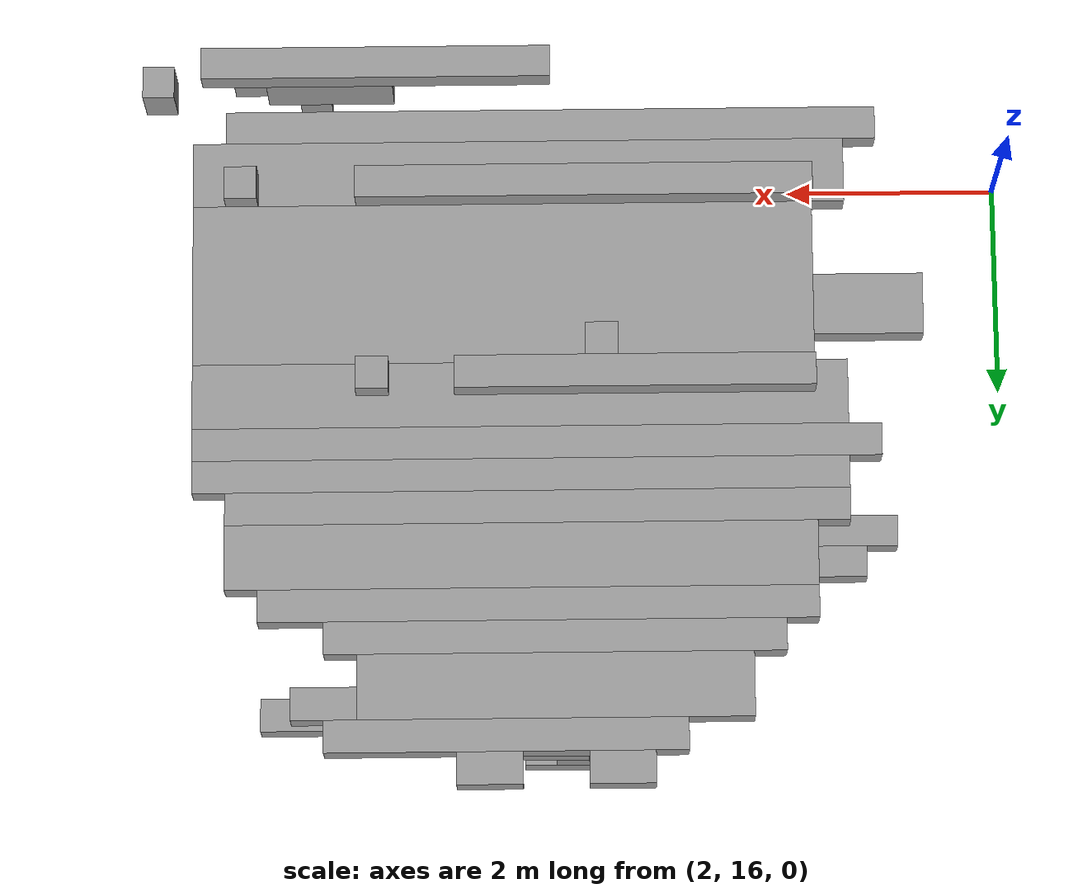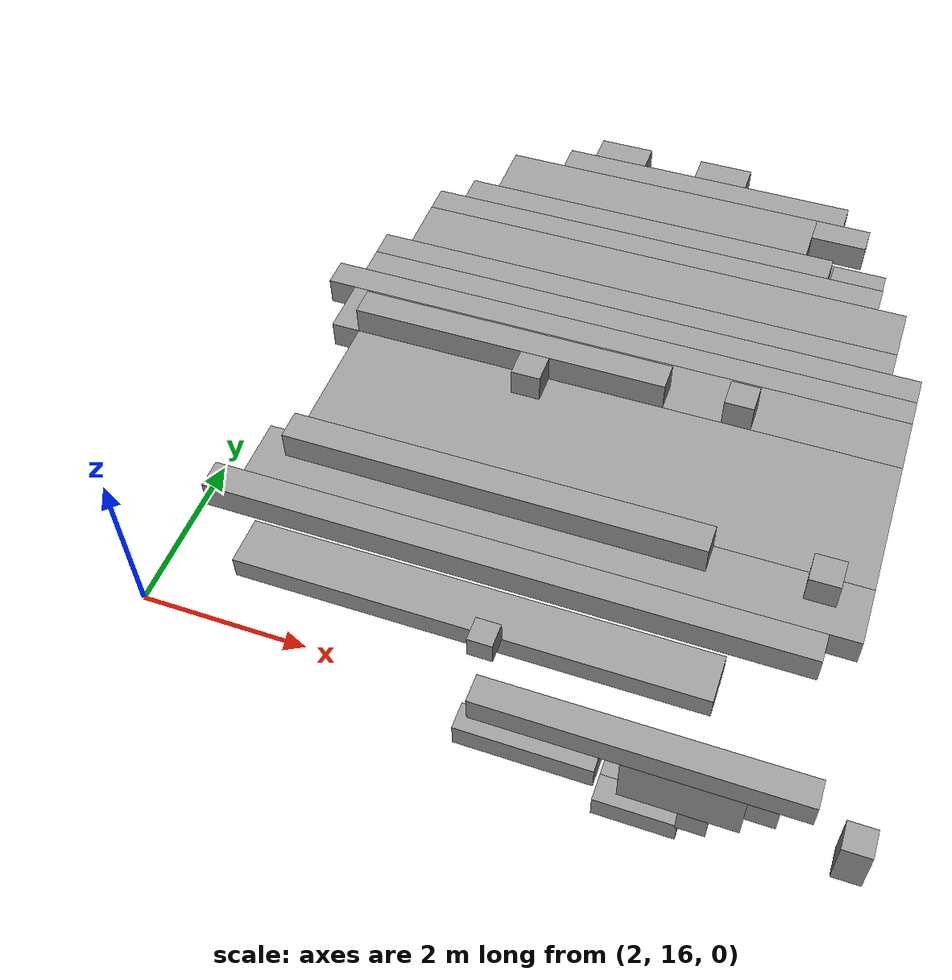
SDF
<sdf version="1.6">
 <world name="bt_world">
  <include><uri>model://sun</uri></include>
  <model name="obstacle_2317">
   <static>true</static>
   <pose>5.55 17.099999999999998 -0.15 0 0 0</pose>
   <link name="link">
    <collision name="collision"><geometry><box><size>5.7 0.6 0.3</size></box></geometry></collision>
    <visual name="visual">
     <geometry><box><size>5.7 0.6 0.3</size></box></geometry>
     <material><ambient>0.5 0.5 0.5 1</ambient><diffuse>0.6 0.6 0.6 1</diffuse></material>
    </visual>
   </link>
  </model>
  <model name="obstacle_2355">
   <static>true</static>
   <pose>5.3999999999999995 19.349999999999998 -0.15 0 0 0</pose>
   <link name="link">
    <collision name="collision"><geometry><box><size>4.8 0.3 0.3</size></box></geometry></collision>
    <visual name="visual">
     <geometry><box><size>4.8 0.3 0.3</size></box></geometry>
     <material><ambient>0.5 0.5 0.5 1</ambient><diffuse>0.6 0.6 0.6 1</diffuse></material>
    </visual>
   </link>
  </model>
  <model name="obstacle_2377">
   <static>true</static>
   <pose>6.3 16.05 2.55 0 0 0</pose>
   <link name="link">
    <collision name="collision"><geometry><box><size>6.0 0.3 0.3</size></box></geometry></collision>
    <visual name="visual">
     <geometry><box><size>6.0 0.3 0.3</size></box></geometry>
     <material><ambient>0.5 0.5 0.5 1</ambient><diffuse>0.6 0.6 0.6 1</diffuse></material>
    </visual>
   </link>
  </model>
  <model name="obstacle_2378">
   <static>true</static>
   <pose>6.45 19.05 2.55 0 0 0</pose>
   <link name="link">
    <collision name="collision"><geometry><box><size>6.3 0.3 0.3</size></box></geometry></collision>
    <visual name="visual">
     <geometry><box><size>6.3 0.3 0.3</size></box></geometry>
     <material><ambient>0.5 0.5 0.5 1</ambient><diffuse>0.6 0.6 0.6 1</diffuse></material>
    </visual>
   </link>
  </model>
  <model name="obstacle_2379">
   <static>true</static>
   <pose>5.3999999999999995 19.65 -0.15 0 0 0</pose>
   <link name="link">
    <collision name="collision"><geometry><box><size>4.2 0.3 0.3</size></box></geometry></collision>
    <visual name="visual">
     <geometry><box><size>4.2 0.3 0.3</size></box></geometry>
     <material><ambient>0.5 0.5 0.5 1</ambient><diffuse>0.6 0.6 0.6 1</diffuse></material>
    </visual>
   </link>
  </model>
  <model name="obstacle_2387">
   <static>true</static>
   <pose>6.6 16.5 2.55 0 0 0</pose>
   <link name="link">
    <collision name="collision"><geometry><box><size>6.0 0.6 0.3</size></box></geometry></collision>
    <visual name="visual">
     <geometry><box><size>6.0 0.6 0.3</size></box></geometry>
     <material><ambient>0.5 0.5 0.5 1</ambient><diffuse>0.6 0.6 0.6 1</diffuse></material>
    </visual>
   </link>
  </model>
  <model name="obstacle_2388">
   <static>true</static>
   <pose>6.6 18.599999999999998 2.55 0 0 0</pose>
   <link name="link">
    <collision name="collision"><geometry><box><size>6.0 0.6 0.3</size></box></geometry></collision>
    <visual name="visual">
     <geometry><box><size>6.0 0.6 0.3</size></box></geometry>
     <material><ambient>0.5 0.5 0.5 1</ambient><diffuse>0.6 0.6 0.6 1</diffuse></material>
    </visual>
   </link>
  </model>
  <model name="obstacle_2389">
   <static>true</static>
   <pose>6.6 19.349999999999998 2.55 0 0 0</pose>
   <link name="link">
    <collision name="collision"><geometry><box><size>6.0 0.3 0.3</size></box></geometry></collision>
    <visual name="visual">
     <geometry><box><size>6.0 0.3 0.3</size></box></geometry>
     <material><ambient>0.5 0.5 0.5 1</ambient><diffuse>0.6 0.6 0.6 1</diffuse></material>
    </visual>
   </link>
  </model>
  <model name="obstacle_2390">
   <static>true</static>
   <pose>6.45 19.65 2.55 0 0 0</pose>
   <link name="link">
    <collision name="collision"><geometry><box><size>5.7 0.3 0.3</size></box></geometry></collision>
    <visual name="visual">
     <geometry><box><size>5.7 0.3 0.3</size></box></geometry>
     <material><ambient>0.5 0.5 0.5 1</ambient><diffuse>0.6 0.6 0.6 1</diffuse></material>
    </visual>
   </link>
  </model>
  <model name="obstacle_2451">
   <static>true</static>
   <pose>6.0 16.65 2.85 0 0 0</pose>
   <link name="link">
    <collision name="collision"><geometry><box><size>4.2 0.3 0.3</size></box></geometry></collision>
    <visual name="visual">
     <geometry><box><size>4.2 0.3 0.3</size></box></geometry>
     <material><ambient>0.5 0.5 0.5 1</ambient><diffuse>0.6 0.6 0.6 1</diffuse></material>
    </visual>
   </link>
  </model>
  <model name="obstacle_2452">
   <static>true</static>
   <pose>6.75 17.55 2.55 0 0 0</pose>
   <link name="link">
    <collision name="collision"><geometry><box><size>5.7 1.5 0.3</size></box></geometry></collision>
    <visual name="visual">
     <geometry><box><size>5.7 1.5 0.3</size></box></geometry>
     <material><ambient>0.5 0.5 0.5 1</ambient><diffuse>0.6 0.6 0.6 1</diffuse></material>
    </visual>
   </link>
  </model>
  <model name="obstacle_2453">
   <static>true</static>
   <pose>5.55 18.45 2.85 0 0 0</pose>
   <link name="link">
    <collision name="collision"><geometry><box><size>3.3 0.3 0.3</size></box></geometry></collision>
    <visual name="visual">
     <geometry><box><size>3.3 0.3 0.3</size></box></geometry>
     <material><ambient>0.5 0.5 0.5 1</ambient><diffuse>0.6 0.6 0.6 1</diffuse></material>
    </visual>
   </link>
  </model>
  <model name="obstacle_2454">
   <static>true</static>
   <pose>6.6 20.099999999999998 2.55 0 0 0</pose>
   <link name="link">
    <collision name="collision">
     <geometry><box><size>5.3999999999999995 0.6 0.3</size></box></geometry>
    </collision>
    <visual name="visual">
     <geometry><box><size>5.3999999999999995 0.6 0.3</size></box></geometry>
     <material><ambient>0.5 0.5 0.5 1</ambient><diffuse>0.6 0.6 0.6 1</diffuse></material>
    </visual>
   </link>
  </model>
  <model name="obstacle_2456">
   <static>true</static>
   <pose>6.45 20.55 2.55 0 0 0</pose>
   <link name="link">
    <collision name="collision"><geometry><box><size>5.1 0.3 0.3</size></box></geometry></collision>
    <visual name="visual">
     <geometry><box><size>5.1 0.3 0.3</size></box></geometry>
     <material><ambient>0.5 0.5 0.5 1</ambient><diffuse>0.6 0.6 0.6 1</diffuse></material>
    </visual>
   </link>
  </model>
  <model name="obstacle_2551">
   <static>true</static>
   <pose>6.3 20.849999999999998 2.55 0 0 0</pose>
   <link name="link">
    <collision name="collision"><geometry><box><size>4.2 0.3 0.3</size></box></geometry></collision>
    <visual name="visual">
     <geometry><box><size>4.2 0.3 0.3</size></box></geometry>
     <material><ambient>0.5 0.5 0.5 1</ambient><diffuse>0.6 0.6 0.6 1</diffuse></material>
    </visual>
   </link>
  </model>
  <model name="obstacle_2600">
   <static>true</static>
   <pose>6.3 21.3 2.55 0 0 0</pose>
   <link name="link">
    <collision name="collision">
     <geometry><box><size>3.5999999999999996 0.6 0.3</size></box></geometry>
    </collision>
    <visual name="visual">
     <geometry><box><size>3.5999999999999996 0.6 0.3</size></box></geometry>
     <material><ambient>0.5 0.5 0.5 1</ambient><diffuse>0.6 0.6 0.6 1</diffuse></material>
    </visual>
   </link>
  </model>
  <model name="obstacle_2622">
   <static>true</static>
   <pose>6.45 21.15 0.44999999999999996 0 0 0</pose>
   <link name="link">
    <collision name="collision">
     <geometry><box><size>2.6999999999999997 0.3 0.3</size></box></geometry>
    </collision>
    <visual name="visual">
     <geometry><box><size>2.6999999999999997 0.3 0.3</size></box></geometry>
     <material><ambient>0.5 0.5 0.5 1</ambient><diffuse>0.6 0.6 0.6 1</diffuse></material>
    </visual>
   </link>
  </model>
  <model name="obstacle_2623">
   <static>true</static>
   <pose>6.75 21.75 2.55 0 0 0</pose>
   <link name="link">
    <collision name="collision"><geometry><box><size>3.3 0.3 0.3</size></box></geometry></collision>
    <visual name="visual">
     <geometry><box><size>3.3 0.3 0.3</size></box></geometry>
     <material><ambient>0.5 0.5 0.5 1</ambient><diffuse>0.6 0.6 0.6 1</diffuse></material>
    </visual>
   </link>
  </model>
  <model name="obstacle_2630">
   <static>true</static>
   <pose>5.7 21.3 0.75 0 0 0</pose>
   <link name="link">
    <collision name="collision"><geometry><box><size>0.6 0.6 0.3</size></box></geometry></collision>
    <visual name="visual">
     <geometry><box><size>0.6 0.6 0.3</size></box></geometry>
     <material><ambient>0.5 0.5 0.5 1</ambient><diffuse>0.6 0.6 0.6 1</diffuse></material>
    </visual>
   </link>
  </model>
  <model name="obstacle_2631">
   <static>true</static>
   <pose>6.0 21.45 -0.15 0 0 0</pose>
   <link name="link">
    <collision name="collision"><geometry><box><size>1.2 0.3 0.3</size></box></geometry></collision>
    <visual name="visual">
     <geometry><box><size>1.2 0.3 0.3</size></box></geometry>
     <material><ambient>0.5 0.5 0.5 1</ambient><diffuse>0.6 0.6 0.6 1</diffuse></material>
    </visual>
   </link>
  </model>
  <model name="obstacle_2632">
   <static>true</static>
   <pose>5.85 21.45 0.15 0 0 0</pose>
   <link name="link">
    <collision name="collision">
     <geometry><box><size>0.8999999999999999 0.3 0.3</size></box></geometry>
    </collision>
    <visual name="visual">
     <geometry><box><size>0.8999999999999999 0.3 0.3</size></box></geometry>
     <material><ambient>0.5 0.5 0.5 1</ambient><diffuse>0.6 0.6 0.6 1</diffuse></material>
    </visual>
   </link>
  </model>
  <model name="obstacle_2633">
   <static>true</static>
   <pose>6.6 21.45 1.5 0 0 0</pose>
   <link name="link">
    <collision name="collision"><geometry><box><size>2.4 0.3 1.2</size></box></geometry></collision>
    <visual name="visual">
     <geometry><box><size>2.4 0.3 1.2</size></box></geometry>
     <material><ambient>0.5 0.5 0.5 1</ambient><diffuse>0.6 0.6 0.6 1</diffuse></material>
    </visual>
   </link>
  </model>
  <model name="obstacle_2634">
   <static>true</static>
   <pose>5.7 22.05 2.55 0 0 0</pose>
   <link name="link">
    <collision name="collision"><geometry><box><size>0.6 0.3 0.3</size></box></geometry></collision>
    <visual name="visual">
     <geometry><box><size>0.6 0.3 0.3</size></box></geometry>
     <material><ambient>0.5 0.5 0.5 1</ambient><diffuse>0.6 0.6 0.6 1</diffuse></material>
    </visual>
   </link>
  </model>
  <model name="obstacle_2636">
   <static>true</static>
   <pose>5.85 16.65 0.15 0 0 0</pose>
   <link name="link">
    <collision name="collision"><geometry><box><size>0.3 0.3 0.3</size></box></geometry></collision>
    <visual name="visual">
     <geometry><box><size>0.3 0.3 0.3</size></box></geometry>
     <material><ambient>0.5 0.5 0.5 1</ambient><diffuse>0.6 0.6 0.6 1</diffuse></material>
    </visual>
   </link>
  </model>
  <model name="obstacle_2637">
   <static>true</static>
   <pose>5.85 18.15 2.85 0 0 0</pose>
   <link name="link">
    <collision name="collision"><geometry><box><size>0.3 0.3 0.3</size></box></geometry></collision>
    <visual name="visual">
     <geometry><box><size>0.3 0.3 0.3</size></box></geometry>
     <material><ambient>0.5 0.5 0.5 1</ambient><diffuse>0.6 0.6 0.6 1</diffuse></material>
    </visual>
   </link>
  </model>
  <model name="obstacle_2638">
   <static>true</static>
   <pose>6.75 21.15 -0.15 0 0 0</pose>
   <link name="link">
    <collision name="collision"><geometry><box><size>2.1 0.3 0.3</size></box></geometry></collision>
    <visual name="visual">
     <geometry><box><size>2.1 0.3 0.3</size></box></geometry>
     <material><ambient>0.5 0.5 0.5 1</ambient><diffuse>0.6 0.6 0.6 1</diffuse></material>
    </visual>
   </link>
  </model>
  <model name="obstacle_2639">
   <static>true</static>
   <pose>6.6 21.15 0.15 0 0 0</pose>
   <link name="link">
    <collision name="collision">
     <geometry><box><size>1.7999999999999998 0.3 0.3</size></box></geometry>
    </collision>
    <visual name="visual">
     <geometry><box><size>1.7999999999999998 0.3 0.3</size></box></geometry>
     <material><ambient>0.5 0.5 0.5 1</ambient><diffuse>0.6 0.6 0.6 1</diffuse></material>
    </visual>
   </link>
  </model>
  <model name="obstacle_2640">
   <static>true</static>
   <pose>6.45 21.45 0.44999999999999996 0 0 0</pose>
   <link name="link">
    <collision name="collision"><geometry><box><size>1.5 0.3 0.3</size></box></geometry></collision>
    <visual name="visual">
     <geometry><box><size>1.5 0.3 0.3</size></box></geometry>
     <material><ambient>0.5 0.5 0.5 1</ambient><diffuse>0.6 0.6 0.6 1</diffuse></material>
    </visual>
   </link>
  </model>
  <model name="obstacle_2641">
   <static>true</static>
   <pose>5.85 21.75 2.25 0 0 0</pose>
   <link name="link">
    <collision name="collision"><geometry><box><size>0.3 0.3 0.3</size></box></geometry></collision>
    <visual name="visual">
     <geometry><box><size>0.3 0.3 0.3</size></box></geometry>
     <material><ambient>0.5 0.5 0.5 1</ambient><diffuse>0.6 0.6 0.6 1</diffuse></material>
    </visual>
   </link>
  </model>
  <model name="obstacle_2645">
   <static>true</static>
   <pose>6.75 15.45 0.44999999999999996 0 0 0</pose>
   <link name="link">
    <collision name="collision"><geometry><box><size>1.5 0.3 0.3</size></box></geometry></collision>
    <visual name="visual">
     <geometry><box><size>1.5 0.3 0.3</size></box></geometry>
     <material><ambient>0.5 0.5 0.5 1</ambient><diffuse>0.6 0.6 0.6 1</diffuse></material>
    </visual>
   </link>
  </model>
  <model name="obstacle_2646">
   <static>true</static>
   <pose>6.8999999999999995 20.849999999999998 0.15 0 0 0</pose>
   <link name="link">
    <collision name="collision">
     <geometry><box><size>1.7999999999999998 0.3 0.3</size></box></geometry>
    </collision>
    <visual name="visual">
     <geometry><box><size>1.7999999999999998 0.3 0.3</size></box></geometry>
     <material><ambient>0.5 0.5 0.5 1</ambient><diffuse>0.6 0.6 0.6 1</diffuse></material>
    </visual>
   </link>
  </model>
  <model name="obstacle_2647">
   <static>true</static>
   <pose>6.3 21.15 1.2 0 0 0</pose>
   <link name="link">
    <collision name="collision"><geometry><box><size>0.6 0.3 0.6</size></box></geometry></collision>
    <visual name="visual">
     <geometry><box><size>0.6 0.3 0.6</size></box></geometry>
     <material><ambient>0.5 0.5 0.5 1</ambient><diffuse>0.6 0.6 0.6 1</diffuse></material>
    </visual>
   </link>
  </model>
  <model name="obstacle_2648">
   <static>true</static>
   <pose>6.3 21.15 1.95 0 0 0</pose>
   <link name="link">
    <collision name="collision"><geometry><box><size>0.6 0.3 0.3</size></box></geometry></collision>
    <visual name="visual">
     <geometry><box><size>0.6 0.3 0.3</size></box></geometry>
     <material><ambient>0.5 0.5 0.5 1</ambient><diffuse>0.6 0.6 0.6 1</diffuse></material>
    </visual>
   </link>
  </model>
  <model name="obstacle_2649">
   <static>true</static>
   <pose>6.8999999999999995 21.45 0.75 0 0 0</pose>
   <link name="link">
    <collision name="collision">
     <geometry><box><size>1.7999999999999998 0.3 0.3</size></box></geometry>
    </collision>
    <visual name="visual">
     <geometry><box><size>1.7999999999999998 0.3 0.3</size></box></geometry>
     <material><ambient>0.5 0.5 0.5 1</ambient><diffuse>0.6 0.6 0.6 1</diffuse></material>
    </visual>
   </link>
  </model>
  <model name="obstacle_2652">
   <static>true</static>
   <pose>7.949999999999999 15.149999999999999 1.65 0 0 0</pose>
   <link name="link">
    <collision name="collision"><geometry><box><size>3.3 0.3 0.3</size></box></geometry></collision>
    <visual name="visual">
     <geometry><box><size>3.3 0.3 0.3</size></box></geometry>
     <material><ambient>0.5 0.5 0.5 1</ambient><diffuse>0.6 0.6 0.6 1</diffuse></material>
    </visual>
   </link>
  </model>
  <model name="obstacle_2653">
   <static>true</static>
   <pose>7.05 20.849999999999998 -0.15 0 0 0</pose>
   <link name="link">
    <collision name="collision"><geometry><box><size>1.5 0.3 0.3</size></box></geometry></collision>
    <visual name="visual">
     <geometry><box><size>1.5 0.3 0.3</size></box></geometry>
     <material><ambient>0.5 0.5 0.5 1</ambient><diffuse>0.6 0.6 0.6 1</diffuse></material>
    </visual>
   </link>
  </model>
  <model name="obstacle_2654">
   <static>true</static>
   <pose>7.05 20.849999999999998 0.44999999999999996 0 0 0</pose>
   <link name="link">
    <collision name="collision"><geometry><box><size>1.5 0.3 0.3</size></box></geometry></collision>
    <visual name="visual">
     <geometry><box><size>1.5 0.3 0.3</size></box></geometry>
     <material><ambient>0.5 0.5 0.5 1</ambient><diffuse>0.6 0.6 0.6 1</diffuse></material>
    </visual>
   </link>
  </model>
  <model name="obstacle_2655">
   <static>true</static>
   <pose>6.75 21.15 0.75 0 0 0</pose>
   <link name="link">
    <collision name="collision">
     <geometry><box><size>0.8999999999999999 0.3 0.3</size></box></geometry>
    </collision>
    <visual name="visual">
     <geometry><box><size>0.8999999999999999 0.3 0.3</size></box></geometry>
     <material><ambient>0.5 0.5 0.5 1</ambient><diffuse>0.6 0.6 0.6 1</diffuse></material>
    </visual>
   </link>
  </model>
  <model name="obstacle_2658">
   <static>true</static>
   <pose>6.8999999999999995 22.05 2.55 0 0 0</pose>
   <link name="link">
    <collision name="collision"><geometry><box><size>0.6 0.3 0.3</size></box></geometry></collision>
    <visual name="visual">
     <geometry><box><size>0.6 0.3 0.3</size></box></geometry>
     <material><ambient>0.5 0.5 0.5 1</ambient><diffuse>0.6 0.6 0.6 1</diffuse></material>
    </visual>
   </link>
  </model>
  <model name="obstacle_2659">
   <static>true</static>
   <pose>7.05 15.75 -0.15 0 0 0</pose>
   <link name="link">
    <collision name="collision"><geometry><box><size>0.3 0.3 0.3</size></box></geometry></collision>
    <visual name="visual">
     <geometry><box><size>0.3 0.3 0.3</size></box></geometry>
     <material><ambient>0.5 0.5 0.5 1</ambient><diffuse>0.6 0.6 0.6 1</diffuse></material>
    </visual>
   </link>
  </model>
  <model name="obstacle_2663">
   <static>true</static>
   <pose>7.949999999999999 15.45 -0.15 0 0 0</pose>
   <link name="link">
    <collision name="collision">
     <geometry><box><size>0.8999999999999999 0.3 0.3</size></box></geometry>
    </collision>
    <visual name="visual">
     <geometry><box><size>0.8999999999999999 0.3 0.3</size></box></geometry>
     <material><ambient>0.5 0.5 0.5 1</ambient><diffuse>0.6 0.6 0.6 1</diffuse></material>
    </visual>
   </link>
  </model>
  <model name="obstacle_2664">
   <static>true</static>
   <pose>7.6499999999999995 15.75 -0.15 0 0 0</pose>
   <link name="link">
    <collision name="collision"><geometry><box><size>0.3 0.3 0.3</size></box></geometry></collision>
    <visual name="visual">
     <geometry><box><size>0.3 0.3 0.3</size></box></geometry>
     <material><ambient>0.5 0.5 0.5 1</ambient><diffuse>0.6 0.6 0.6 1</diffuse></material>
    </visual>
   </link>
  </model>
  <model name="obstacle_2666">
   <static>true</static>
   <pose>8.4 15.149999999999999 1.2 0 0 0</pose>
   <link name="link">
    <collision name="collision"><geometry><box><size>1.2 0.3 0.6</size></box></geometry></collision>
    <visual name="visual">
     <geometry><box><size>1.2 0.3 0.6</size></box></geometry>
     <material><ambient>0.5 0.5 0.5 1</ambient><diffuse>0.6 0.6 0.6 1</diffuse></material>
    </visual>
   </link>
  </model>
  <model name="obstacle_2667">
   <static>true</static>
   <pose>7.949999999999999 18.599999999999998 -0.15 0 0 0</pose>
   <link name="link">
    <collision name="collision"><geometry><box><size>0.3 0.6 0.3</size></box></geometry></collision>
    <visual name="visual">
     <geometry><box><size>0.3 0.6 0.3</size></box></geometry>
     <material><ambient>0.5 0.5 0.5 1</ambient><diffuse>0.6 0.6 0.6 1</diffuse></material>
    </visual>
   </link>
  </model>
  <model name="obstacle_2668">
   <static>true</static>
   <pose>7.949999999999999 18.45 2.85 0 0 0</pose>
   <link name="link">
    <collision name="collision"><geometry><box><size>0.3 0.3 0.3</size></box></geometry></collision>
    <visual name="visual">
     <geometry><box><size>0.3 0.3 0.3</size></box></geometry>
     <material><ambient>0.5 0.5 0.5 1</ambient><diffuse>0.6 0.6 0.6 1</diffuse></material>
    </visual>
   </link>
  </model>
  <model name="obstacle_2669">
   <static>true</static>
   <pose>8.1 21.45 1.65 0 0 0</pose>
   <link name="link">
    <collision name="collision">
     <geometry><box><size>0.6 0.3 0.8999999999999999</size></box></geometry>
    </collision>
    <visual name="visual">
     <geometry><box><size>0.6 0.3 0.8999999999999999</size></box></geometry>
     <material><ambient>0.5 0.5 0.5 1</ambient><diffuse>0.6 0.6 0.6 1</diffuse></material>
    </visual>
   </link>
  </model>
  <model name="obstacle_2671">
   <static>true</static>
   <pose>8.4 21.45 2.55 0 0 0</pose>
   <link name="link">
    <collision name="collision"><geometry><box><size>0.6 0.3 0.3</size></box></geometry></collision>
    <visual name="visual">
     <geometry><box><size>0.6 0.3 0.3</size></box></geometry>
     <material><ambient>0.5 0.5 0.5 1</ambient><diffuse>0.6 0.6 0.6 1</diffuse></material>
    </visual>
   </link>
  </model>
  <model name="obstacle_2673">
   <static>true</static>
   <pose>8.549999999999999 15.149999999999999 0.75 0 0 0</pose>
   <link name="link">
    <collision name="collision"><geometry><box><size>0.3 0.3 0.3</size></box></geometry></collision>
    <visual name="visual">
     <geometry><box><size>0.3 0.3 0.3</size></box></geometry>
     <material><ambient>0.5 0.5 0.5 1</ambient><diffuse>0.6 0.6 0.6 1</diffuse></material>
    </visual>
   </link>
  </model>
  <model name="obstacle_2674">
   <static>true</static>
   <pose>8.7 21.45 1.95 0 0 0</pose>
   <link name="link">
    <collision name="collision"><geometry><box><size>0.6 0.3 0.3</size></box></geometry></collision>
    <visual name="visual">
     <geometry><box><size>0.6 0.3 0.3</size></box></geometry>
     <material><ambient>0.5 0.5 0.5 1</ambient><diffuse>0.6 0.6 0.6 1</diffuse></material>
    </visual>
   </link>
  </model>
  <model name="obstacle_2675">
   <static>true</static>
   <pose>9.15 15.149999999999999 1.3499999999999999 0 0 0</pose>
   <link name="link">
    <collision name="collision"><geometry><box><size>0.3 0.3 0.3</size></box></geometry></collision>
    <visual name="visual">
     <geometry><box><size>0.3 0.3 0.3</size></box></geometry>
     <material><ambient>0.5 0.5 0.5 1</ambient><diffuse>0.6 0.6 0.6 1</diffuse></material>
    </visual>
   </link>
  </model>
  <model name="obstacle_2676">
   <static>true</static>
   <pose>9.15 16.65 2.85 0 0 0</pose>
   <link name="link">
    <collision name="collision"><geometry><box><size>0.3 0.3 0.3</size></box></geometry></collision>
    <visual name="visual">
     <geometry><box><size>0.3 0.3 0.3</size></box></geometry>
     <material><ambient>0.5 0.5 0.5 1</ambient><diffuse>0.6 0.6 0.6 1</diffuse></material>
    </visual>
   </link>
  </model>
  <model name="obstacle_2680">
   <static>true</static>
   <pose>10.049999999999999 15.149999999999999 0.8999999999999999 0 0 0</pose>
   <link name="link">
    <collision name="collision"><geometry><box><size>0.3 0.3 0.6</size></box></geometry></collision>
    <visual name="visual">
     <geometry><box><size>0.3 0.3 0.6</size></box></geometry>
     <material><ambient>0.5 0.5 0.5 1</ambient><diffuse>0.6 0.6 0.6 1</diffuse></material>
    </visual>
   </link>
  </model>
 </world>
</sdf>
